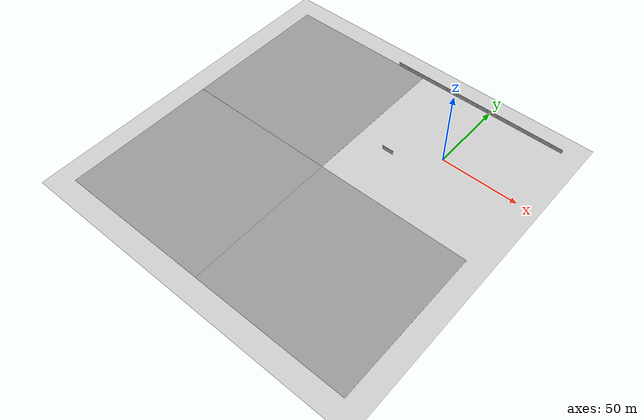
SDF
<sdf version="1.6">
 <world name="default">
  <light name="sun" type="directional">
   <pose>0 0 10 0 -0 0</pose>
   <diffuse>0.8 0.8 0.8 1</diffuse>
   <specular>0.2 0.2 0.2 1</specular>
   <attenuation>
    <range>1000</range>
    <constant>0.9</constant>
    <linear>0.01</linear>
    <quadratic>0.001</quadratic>
   </attenuation>
   <direction>-0.5 0.1 -0.9</direction>
  </light>
  <model name="ground_plane">
   <static>1</static>
   <link name="link">
    <collision name="collision">
     <geometry><plane><normal>0 0 1</normal><size>100 100</size></plane></geometry>
     <surface><friction><ode><mu>100</mu><mu2>50</mu2></ode></friction></surface>
    </collision>
    <visual name="visual">
     <cast_shadows>0</cast_shadows>
     <geometry><plane><normal>0 0 1</normal><size>100 100</size></plane></geometry>
     <material>
      <script><uri>file://media/materials/scripts/gazebo.material</uri><name>Gazebo/Grey</name></script>
     </material>
    </visual>
   </link>
  </model>
  <gravity>0 0 -9.8</gravity>
  <magnetic_field>6e-06 2.3e-05 -4.2e-05</magnetic_field>
  <atmosphere type="adiabatic"/>
  <physics name="default_physics" default="0" type="ode">
   <max_step_size>0.001</max_step_size>
   <real_time_factor>1</real_time_factor>
   <real_time_update_rate>1000</real_time_update_rate>
  </physics>
  <scene><ambient>0.4 0.4 0.4 1</ambient><background>0.7 0.7 0.7 1</background><shadows>1</shadows></scene>
  <audio><device>default</device></audio>
  <spherical_coordinates>
   <surface_model>EARTH_WGS84</surface_model>
   <latitude_deg>0</latitude_deg>
   <longitude_deg>0</longitude_deg>
   <elevation>0</elevation>
   <heading_deg>0</heading_deg>
  </spherical_coordinates>
  <model name="ground_plane_0">
   <static>1</static>
   <link name="link">
    <collision name="collision">
     <geometry><plane><normal>0 0 1</normal><size>100 100</size></plane></geometry>
     <surface><friction><ode><mu>100</mu><mu2>50</mu2></ode></friction></surface>
    </collision>
    <visual name="visual">
     <cast_shadows>0</cast_shadows>
     <geometry><plane><normal>0 0 1</normal><size>100 100</size></plane></geometry>
     <material>
      <script><uri>file://media/materials/scripts/gazebo.material</uri><name>Gazebo/Grey</name></script>
     </material>
    </visual>
   </link>
   <pose>0 -100 0 0 -0 0</pose>
  </model>
  <model name="ground_plane_1">
   <static>1</static>
   <link name="link">
    <collision name="collision">
     <geometry><plane><normal>0 0 1</normal><size>100 100</size></plane></geometry>
     <surface><friction><ode><mu>100</mu><mu2>50</mu2></ode></friction></surface>
    </collision>
    <visual name="visual">
     <cast_shadows>0</cast_shadows>
     <geometry><plane><normal>0 0 1</normal><size>100 100</size></plane></geometry>
     <material>
      <script><uri>file://media/materials/scripts/gazebo.material</uri><name>Gazebo/Grey</name></script>
     </material>
    </visual>
   </link>
   <pose>-100 -100 0 0 -0 0</pose>
  </model>
  <model name="ground_plane_2">
   <static>1</static>
   <link name="link">
    <collision name="collision">
     <geometry><plane><normal>0 0 1</normal><size>100 100</size></plane></geometry>
     <surface><friction><ode><mu>100</mu><mu2>50</mu2></ode></friction></surface>
    </collision>
    <visual name="visual">
     <cast_shadows>0</cast_shadows>
     <geometry><plane><normal>0 0 1</normal><size>100 100</size></plane></geometry>
     <material>
      <script><uri>file://media/materials/scripts/gazebo.material</uri><name>Gazebo/Grey</name></script>
     </material>
    </visual>
   </link>
   <pose>-100 0 0 0 -0 1.57</pose>
  </model>
  <model name="grey_wall">
   <static>1</static>
   <link name="link">
    <pose>0 0 1.4 0 -0 0</pose>
    <collision name="collision"><geometry><box><size>7.5 0.2 2.8</size></box></geometry></collision>
    <visual name="visual">
     <cast_shadows>0</cast_shadows>
     <geometry><box><size>7.5 0.2 2.8</size></box></geometry>
     <material>
      <script>
       <uri>model://grey_wall/materials/scripts</uri>
       <uri>model://grey_wall/materials/textures</uri>
       <name>vrc/grey_wall</name>
      </script>
     </material>
    </visual>
   </link>
   <pose>-28.4954 -15.7859 0 0 -0 0</pose>
  </model>
  <model name="grey_wall_0">
   <static>1</static>
   <link name="link">
    <pose>0 0 1.4 0 -0 0</pose>
    <collision name="collision"><geometry><box><size>7.5 0.2 2.8</size></box></geometry></collision>
    <visual name="visual">
     <cast_shadows>0</cast_shadows>
     <geometry><box><size>7.5 0.2 2.8</size></box></geometry>
     <material>
      <script>
       <uri>model://grey_wall/materials/scripts</uri>
       <uri>model://grey_wall/materials/textures</uri>
       <name>vrc/grey_wall</name>
      </script>
     </material>
    </visual>
   </link>
   <pose>46.526 49.7663 0 0 -0 0</pose>
  </model>
  <model name="grey_wall_1">
   <static>1</static>
   <link name="link">
    <pose>0 0 1.4 0 -0 0</pose>
    <collision name="collision"><geometry><box><size>7.5 0.2 2.8</size></box></geometry></collision>
    <visual name="visual">
     <cast_shadows>0</cast_shadows>
     <geometry><box><size>7.5 0.2 2.8</size></box></geometry>
     <material>
      <script>
       <uri>model://grey_wall/materials/scripts</uri>
       <uri>model://grey_wall/materials/textures</uri>
       <name>vrc/grey_wall</name>
      </script>
     </material>
    </visual>
   </link>
   <pose>39.1039 49.7675 0 0 -0 0</pose>
  </model>
  <model name="grey_wall_2">
   <static>1</static>
   <link name="link">
    <pose>0 0 1.4 0 -0 0</pose>
    <collision name="collision"><geometry><box><size>7.5 0.2 2.8</size></box></geometry></collision>
    <visual name="visual">
     <cast_shadows>0</cast_shadows>
     <geometry><box><size>7.5 0.2 2.8</size></box></geometry>
     <material>
      <script>
       <uri>model://grey_wall/materials/scripts</uri>
       <uri>model://grey_wall/materials/textures</uri>
       <name>vrc/grey_wall</name>
      </script>
     </material>
    </visual>
   </link>
   <pose>31.7265 49.7725 0 0 -0 0</pose>
  </model>
  <model name="grey_wall_3">
   <static>1</static>
   <link name="link">
    <pose>0 0 1.4 0 -0 0</pose>
    <collision name="collision"><geometry><box><size>7.5 0.2 2.8</size></box></geometry></collision>
    <visual name="visual">
     <cast_shadows>0</cast_shadows>
     <geometry><box><size>7.5 0.2 2.8</size></box></geometry>
     <material>
      <script>
       <uri>model://grey_wall/materials/scripts</uri>
       <uri>model://grey_wall/materials/textures</uri>
       <name>vrc/grey_wall</name>
      </script>
     </material>
    </visual>
   </link>
   <pose>24.3259 49.7589 0 0 -0 0</pose>
  </model>
  <model name="grey_wall_4">
   <static>1</static>
   <link name="link">
    <pose>0 0 1.4 0 -0 0</pose>
    <collision name="collision"><geometry><box><size>7.5 0.2 2.8</size></box></geometry></collision>
    <visual name="visual">
     <cast_shadows>0</cast_shadows>
     <geometry><box><size>7.5 0.2 2.8</size></box></geometry>
     <material>
      <script>
       <uri>model://grey_wall/materials/scripts</uri>
       <uri>model://grey_wall/materials/textures</uri>
       <name>vrc/grey_wall</name>
      </script>
     </material>
    </visual>
   </link>
   <pose>16.9261 49.7668 0 0 -0 0</pose>
  </model>
  <model name="grey_wall_5">
   <static>1</static>
   <link name="link">
    <pose>0 0 1.4 0 -0 0</pose>
    <collision name="collision"><geometry><box><size>7.5 0.2 2.8</size></box></geometry></collision>
    <visual name="visual">
     <cast_shadows>0</cast_shadows>
     <geometry><box><size>7.5 0.2 2.8</size></box></geometry>
     <material>
      <script>
       <uri>model://grey_wall/materials/scripts</uri>
       <uri>model://grey_wall/materials/textures</uri>
       <name>vrc/grey_wall</name>
      </script>
     </material>
    </visual>
   </link>
   <pose>9.4311 49.7521 0 0 -0 0</pose>
  </model>
  <model name="grey_wall_6">
   <static>1</static>
   <link name="link">
    <pose>0 0 1.4 0 -0 0</pose>
    <collision name="collision"><geometry><box><size>7.5 0.2 2.8</size></box></geometry></collision>
    <visual name="visual">
     <cast_shadows>0</cast_shadows>
     <geometry><box><size>7.5 0.2 2.8</size></box></geometry>
     <material>
      <script>
       <uri>model://grey_wall/materials/scripts</uri>
       <uri>model://grey_wall/materials/textures</uri>
       <name>vrc/grey_wall</name>
      </script>
     </material>
    </visual>
   </link>
   <pose>1.95469 49.7405 0 0 -0 0</pose>
  </model>
  <model name="grey_wall_7">
   <static>1</static>
   <link name="link">
    <pose>0 0 1.4 0 -0 0</pose>
    <collision name="collision"><geometry><box><size>7.5 0.2 2.8</size></box></geometry></collision>
    <visual name="visual">
     <cast_shadows>0</cast_shadows>
     <geometry><box><size>7.5 0.2 2.8</size></box></geometry>
     <material>
      <script>
       <uri>model://grey_wall/materials/scripts</uri>
       <uri>model://grey_wall/materials/textures</uri>
       <name>vrc/grey_wall</name>
      </script>
     </material>
    </visual>
   </link>
   <pose>-5.46404 49.7434 0 0 -0 0</pose>
  </model>
  <model name="grey_wall_8">
   <static>1</static>
   <link name="link">
    <pose>0 0 1.4 0 -0 0</pose>
    <collision name="collision"><geometry><box><size>7.5 0.2 2.8</size></box></geometry></collision>
    <visual name="visual">
     <cast_shadows>0</cast_shadows>
     <geometry><box><size>7.5 0.2 2.8</size></box></geometry>
     <material>
      <script>
       <uri>model://grey_wall/materials/scripts</uri>
       <uri>model://grey_wall/materials/textures</uri>
       <name>vrc/grey_wall</name>
      </script>
     </material>
    </visual>
   </link>
   <pose>-12.8452 49.7382 0 0 -0 0</pose>
  </model>
  <model name="grey_wall_9">
   <static>1</static>
   <link name="link">
    <pose>0 0 1.4 0 -0 0</pose>
    <collision name="collision"><geometry><box><size>7.5 0.2 2.8</size></box></geometry></collision>
    <visual name="visual">
     <cast_shadows>0</cast_shadows>
     <geometry><box><size>7.5 0.2 2.8</size></box></geometry>
     <material>
      <script>
       <uri>model://grey_wall/materials/scripts</uri>
       <uri>model://grey_wall/materials/textures</uri>
       <name>vrc/grey_wall</name>
      </script>
     </material>
    </visual>
   </link>
   <pose>-20.2974 49.7434 0 0 -0 0</pose>
  </model>
  <model name="grey_wall_10">
   <static>1</static>
   <link name="link">
    <pose>0 0 1.4 0 -0 0</pose>
    <collision name="collision"><geometry><box><size>7.5 0.2 2.8</size></box></geometry></collision>
    <visual name="visual">
     <cast_shadows>0</cast_shadows>
     <geometry><box><size>7.5 0.2 2.8</size></box></geometry>
     <material>
      <script>
       <uri>model://grey_wall/materials/scripts</uri>
       <uri>model://grey_wall/materials/textures</uri>
       <name>vrc/grey_wall</name>
      </script>
     </material>
    </visual>
   </link>
   <pose>-27.7831 49.7324 0 0 -0 0</pose>
  </model>
  <model name="grey_wall_11">
   <static>1</static>
   <link name="link">
    <pose>0 0 1.4 0 -0 0</pose>
    <collision name="collision"><geometry><box><size>7.5 0.2 2.8</size></box></geometry></collision>
    <visual name="visual">
     <cast_shadows>0</cast_shadows>
     <geometry><box><size>7.5 0.2 2.8</size></box></geometry>
     <material>
      <script>
       <uri>model://grey_wall/materials/scripts</uri>
       <uri>model://grey_wall/materials/textures</uri>
       <name>vrc/grey_wall</name>
      </script>
     </material>
    </visual>
   </link>
   <pose>-35.2764 49.7198 0 0 -0 0</pose>
  </model>
  <model name="grey_wall_12">
   <static>1</static>
   <link name="link">
    <pose>0 0 1.4 0 -0 0</pose>
    <collision name="collision"><geometry><box><size>7.5 0.2 2.8</size></box></geometry></collision>
    <visual name="visual">
     <cast_shadows>0</cast_shadows>
     <geometry><box><size>7.5 0.2 2.8</size></box></geometry>
     <material>
      <script>
       <uri>model://grey_wall/materials/scripts</uri>
       <uri>model://grey_wall/materials/textures</uri>
       <name>vrc/grey_wall</name>
      </script>
     </material>
    </visual>
   </link>
   <pose>-42.7664 49.7201 0 0 -0 0</pose>
  </model>
  <model name="grey_wall_13">
   <static>1</static>
   <link name="link">
    <pose>0 0 1.4 0 -0 0</pose>
    <collision name="collision"><geometry><box><size>7.5 0.2 2.8</size></box></geometry></collision>
    <visual name="visual">
     <cast_shadows>0</cast_shadows>
     <geometry><box><size>7.5 0.2 2.8</size></box></geometry>
     <material>
      <script>
       <uri>model://grey_wall/materials/scripts</uri>
       <uri>model://grey_wall/materials/textures</uri>
       <name>vrc/grey_wall</name>
      </script>
     </material>
    </visual>
   </link>
   <pose>-50.2808 49.7217 0 0 -0 0</pose>
  </model>
  <model name="grey_wall_14">
   <static>1</static>
   <link name="link">
    <pose>0 0 1.4 0 -0 0</pose>
    <collision name="collision"><geometry><box><size>7.5 0.2 2.8</size></box></geometry></collision>
    <visual name="visual">
     <cast_shadows>0</cast_shadows>
     <geometry><box><size>7.5 0.2 2.8</size></box></geometry>
     <material>
      <script>
       <uri>model://grey_wall/materials/scripts</uri>
       <uri>model://grey_wall/materials/textures</uri>
       <name>vrc/grey_wall</name>
      </script>
     </material>
    </visual>
   </link>
   <pose>-57.779 49.7287 0 0 -0 0</pose>
  </model>
  <model name="grey_wall_15">
   <static>1</static>
   <link name="link">
    <pose>0 0 1.4 0 -0 0</pose>
    <collision name="collision"><geometry><box><size>7.5 0.2 2.8</size></box></geometry></collision>
    <visual name="visual">
     <cast_shadows>0</cast_shadows>
     <geometry><box><size>7.5 0.2 2.8</size></box></geometry>
     <material>
      <script>
       <uri>model://grey_wall/materials/scripts</uri>
       <uri>model://grey_wall/materials/textures</uri>
       <name>vrc/grey_wall</name>
      </script>
     </material>
    </visual>
   </link>
   <pose>-65.2835 49.7289 0 0 -0 0</pose>
  </model>
 </world>
</sdf>
